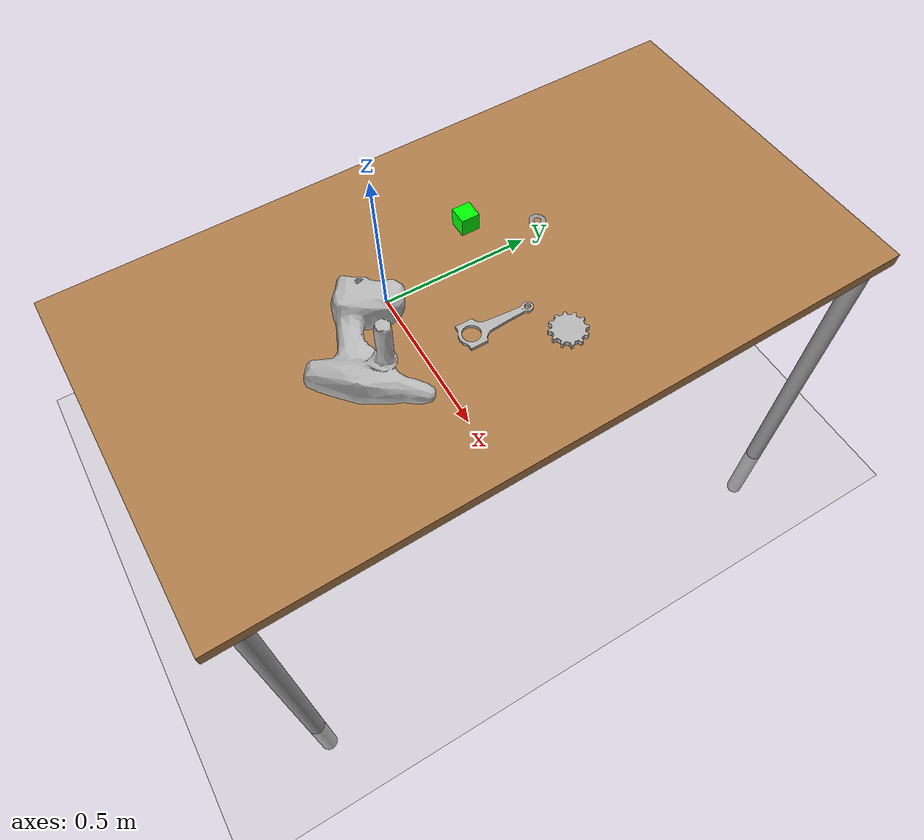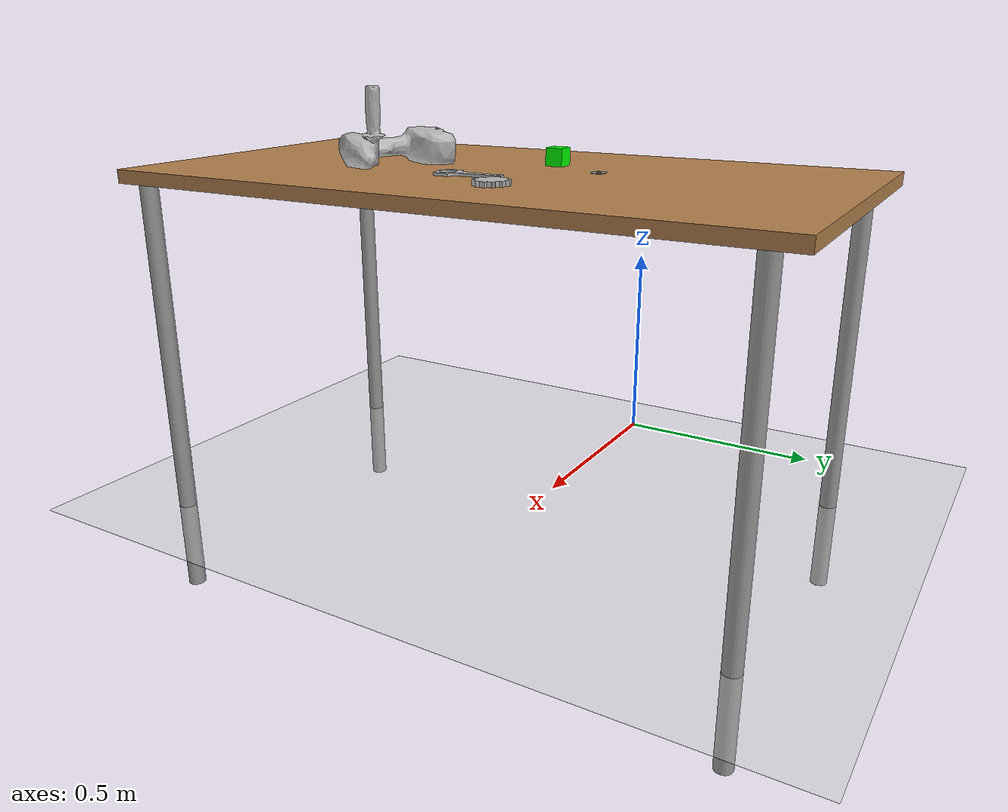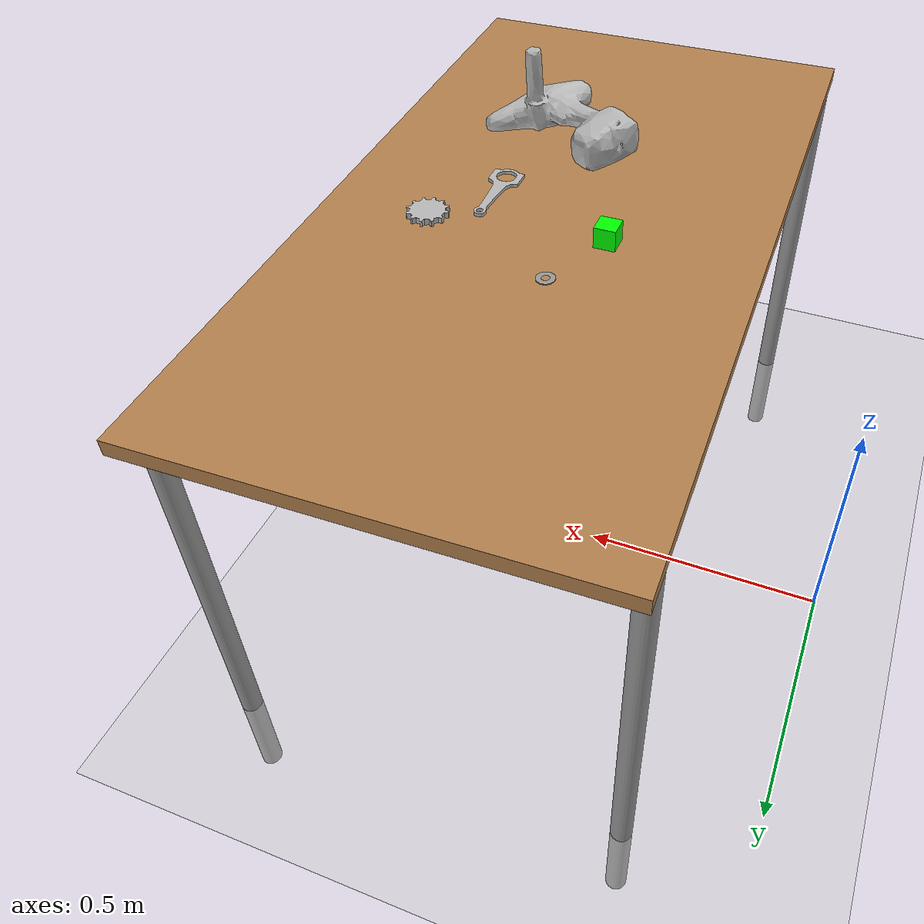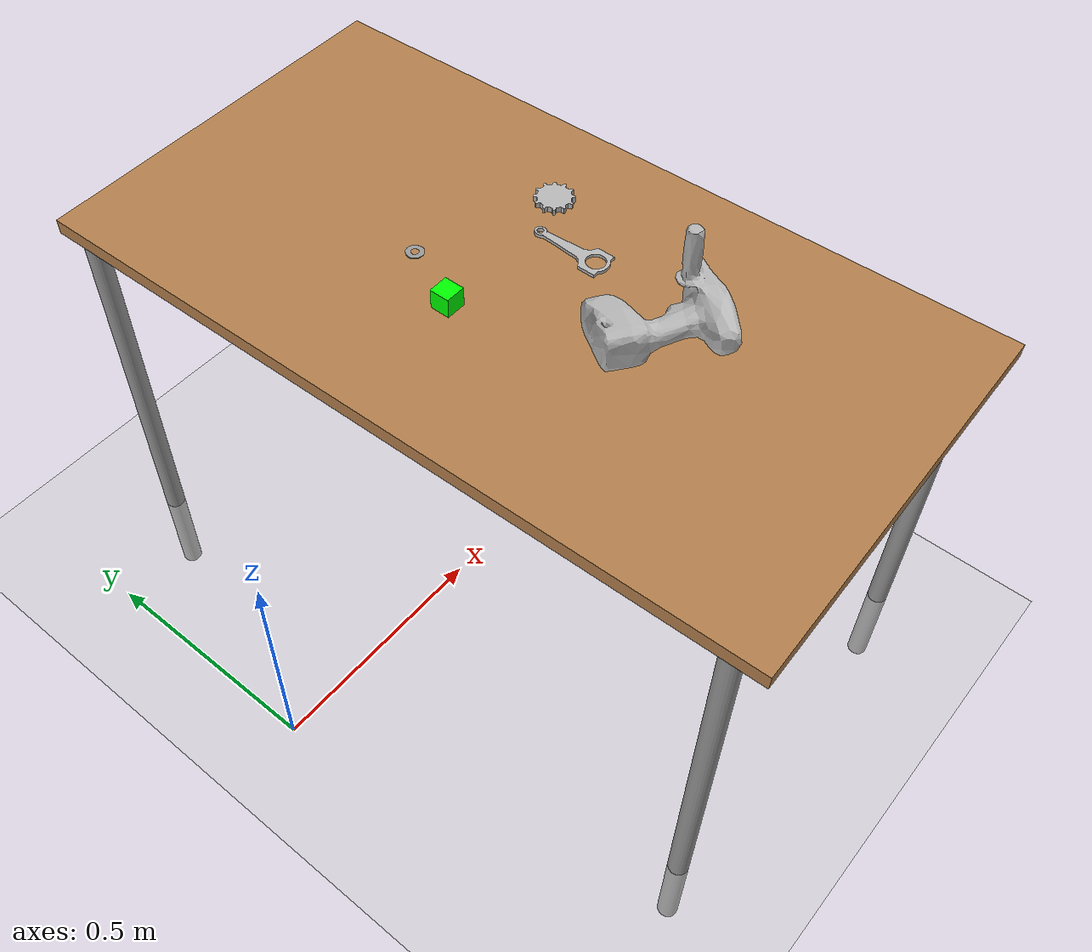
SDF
<sdf version="1.7">
 <world name="default">
  <light name="sun" type="directional">
   <pose>0 0 10 0 -0 0</pose>
   <diffuse>0.8 0.8 0.8 1</diffuse>
   <specular>0.2 0.2 0.2 1</specular>
   <attenuation>
    <range>1000</range>
    <constant>0.9</constant>
    <linear>0.01</linear>
    <quadratic>0.001</quadratic>
   </attenuation>
   <direction>-0.5 0.1 -0.9</direction>
   <spot><inner_angle>0</inner_angle><outer_angle>0</outer_angle><falloff>0</falloff></spot>
  </light>
  <model name="ground_plane">
   <static>1</static>
   <link name="link">
    <collision name="collision">
     <geometry><plane><normal>0 0 1</normal><size>100 100</size></plane></geometry>
     <surface><friction><ode><mu>100</mu><mu2>50</mu2></ode></friction></surface>
    </collision>
    <visual name="visual">
     <cast_shadows>0</cast_shadows>
     <geometry><plane><normal>0 0 1</normal><size>100 100</size></plane></geometry>
     <material>
      <script><uri>file://media/materials/scripts/gazebo.material</uri><name>Gazebo/Grey</name></script>
     </material>
    </visual>
   </link>
  </model>
  <gravity>0 0 -9.8</gravity>
  <magnetic_field>6e-06 2.3e-05 -4.2e-05</magnetic_field>
  <atmosphere type="adiabatic"/>
  <physics type="ode">
   <max_step_size>0.001</max_step_size>
   <real_time_factor>1</real_time_factor>
   <real_time_update_rate>1000</real_time_update_rate>
  </physics>
  <scene><ambient>0.8 0.8 0.8 1</ambient><background>0.7 0.7 0.7 1</background><shadows>1</shadows></scene>
  <audio><device>default</device></audio>
  <spherical_coordinates>
   <surface_model>EARTH_WGS84</surface_model>
   <latitude_deg>0</latitude_deg>
   <longitude_deg>0</longitude_deg>
   <elevation>0</elevation>
   <heading_deg>0</heading_deg>
  </spherical_coordinates>
  <model name="table">
   <static>1</static>
   <link name="link">
    <collision name="surface">
     <pose>0 0 1 0 -0 0</pose>
     <geometry><box><size>1.5 0.8 0.03</size></box></geometry>
     <surface><friction><ode><mu>0.6</mu><mu2>0.6</mu2></ode></friction></surface>
    </collision>
    <visual name="visual1">
     <pose>0 0 1 0 -0 0</pose>
     <geometry><box><size>1.5 0.8 0.03</size></box></geometry>
     <material>
      <script><uri>file://media/materials/scripts/gazebo.material</uri><name>Gazebo/Wood</name></script>
     </material>
    </visual>
    <collision name="front_left_leg">
     <pose>0.68 0.38 0.5 0 -0 0</pose>
     <geometry><cylinder><radius>0.02</radius><length>1</length></cylinder></geometry>
    </collision>
    <visual name="front_left_leg">
     <pose>0.68 0.38 0.5 0 -0 0</pose>
     <geometry><cylinder><radius>0.02</radius><length>1</length></cylinder></geometry>
     <material>
      <script><uri>file://media/materials/scripts/gazebo.material</uri><name>Gazebo/Grey</name></script>
     </material>
    </visual>
    <collision name="front_right_leg">
     <pose>0.68 -0.38 0.5 0 -0 0</pose>
     <geometry><cylinder><radius>0.02</radius><length>1</length></cylinder></geometry>
    </collision>
    <visual name="front_right_leg">
     <pose>0.68 -0.38 0.5 0 -0 0</pose>
     <geometry><cylinder><radius>0.02</radius><length>1</length></cylinder></geometry>
     <material>
      <script><uri>file://media/materials/scripts/gazebo.material</uri><name>Gazebo/Grey</name></script>
     </material>
    </visual>
    <collision name="back_right_leg">
     <pose>-0.68 -0.38 0.5 0 -0 0</pose>
     <geometry><cylinder><radius>0.02</radius><length>1</length></cylinder></geometry>
    </collision>
    <visual name="back_right_leg">
     <pose>-0.68 -0.38 0.5 0 -0 0</pose>
     <geometry><cylinder><radius>0.02</radius><length>1</length></cylinder></geometry>
     <material>
      <script><uri>file://media/materials/scripts/gazebo.material</uri><name>Gazebo/Grey</name></script>
     </material>
    </visual>
    <collision name="back_left_leg">
     <pose>-0.68 0.38 0.5 0 -0 0</pose>
     <geometry><cylinder><radius>0.02</radius><length>1</length></cylinder></geometry>
    </collision>
    <visual name="back_left_leg">
     <pose>-0.68 0.38 0.5 0 -0 0</pose>
     <geometry><cylinder><radius>0.02</radius><length>1</length></cylinder></geometry>
     <material>
      <script><uri>file://media/materials/scripts/gazebo.material</uri><name>Gazebo/Grey</name></script>
     </material>
    </visual>
   </link>
   <pose>0.628743 -0.054706 -0.216115 0 0 -1.54736</pose>
  </model>
  <model name="green_cube">
   <link name="link_2">
    <inertial>
     <mass>1</mass>
     <inertia>
      <ixx>0.166667</ixx>
      <ixy>0</ixy>
      <ixz>0</ixz>
      <iyy>0.166667</iyy>
      <iyz>0</iyz>
      <izz>0.166667</izz>
     </inertia>
    </inertial>
    <visual name="visual">
     <geometry><box><size>0.04 0.04 0.04</size></box></geometry>
     <material>
      <lighting>1</lighting>
      <script><uri>file://media/materials/scripts/gazebo.material</uri><name>Gazebo/Grey</name></script>
      <shader type="pixel"><normal_map>__default__</normal_map></shader>
      <ambient>0 1 0 1</ambient>
      <diffuse>0.7 0.7 0.7 1</diffuse>
      <specular>0.01 0.01 0.01 1</specular>
      <emissive>0 0 0 1</emissive>
     </material>
    </visual>
    <collision name="collision">
     <geometry><box><size>0.04 0.04 0.04</size></box></geometry>
     <surface>
      <friction>
       <ode><mu>1</mu><mu2>1</mu2><fdir1>0 0 0</fdir1><slip1>0</slip1><slip2>0</slip2></ode>
       <torsional>
        <coefficient>1</coefficient>
        <patch_radius>0</patch_radius>
        <surface_radius>0</surface_radius>
        <use_patch_radius>1</use_patch_radius>
        <ode><slip>0</slip></ode>
       </torsional>
      </friction>
      <bounce><restitution_coefficient>0</restitution_coefficient><threshold>1e+06</threshold></bounce>
      <contact>
       <collide_without_contact>0</collide_without_contact>
       <collide_without_contact_bitmask>1</collide_without_contact_bitmask>
       <collide_bitmask>1</collide_bitmask>
       <ode>
        <soft_cfm>0</soft_cfm>
        <soft_erp>0.2</soft_erp>
        <kp>1e+13</kp>
        <kd>1</kd>
        <max_vel>0.01</max_vel>
        <min_depth>0</min_depth>
       </ode>
       <bullet>
        <split_impulse>1</split_impulse>
        <split_impulse_penetration_threshold>-0.01</split_impulse_penetration_threshold>
        <soft_cfm>0</soft_cfm>
        <soft_erp>0.2</soft_erp>
        <kp>1e+13</kp>
        <kd>1</kd>
       </bullet>
      </contact>
     </surface>
    </collision>
    <sensor name="box_contact" type="contact">
     <contact><collision>collision</collision><topic>__default_topic__</topic></contact>
    </sensor>
   </link>
   <static>0</static>
   <pose>0.500004 -1e-06 0.818885 1e-06 1.2e-05 0.002425</pose>
  </model>
  <plugin name="gazebo_link_attacher" filename="libgazebo_link_attacher.so"/>
  <plugin name="gazebo_ros_init" filename="libgazebo_ros_init.so"/>
  <plugin name="gazebo_ros_factory" filename="libgazebo_ros_factory.so"/>
  <model name="drill">
   <link name="link">
    <inertial>
     <pose>-0.00637 -0.008 0.13254 0 -0 0</pose>
     <inertia>
      <ixx>0.0133113</ixx>
      <ixy>-0.00030365</ixy>
      <ixz>-0.00034148</ixz>
      <iyy>0.0115766</iyy>
      <iyz>0.00088073</iyz>
      <izz>0.00378028</izz>
     </inertia>
     <mass>1.50252</mass>
    </inertial>
    <collision name="collision">
     <pose>0 0 -0.09 0 -0 0</pose>
     <geometry><mesh><uri>model://cordless_drill/meshes/cordless_drill.stl</uri></mesh></geometry>
     <surface><contact><ode><max_vel>0.1</max_vel><min_depth>0.001</min_depth></ode></contact></surface>
    </collision>
    <visual name="visual">
     <pose>0 0 -0.09 0 -0 0</pose>
     <geometry><mesh><uri>model://cordless_drill/meshes/cordless_drill.dae</uri></mesh></geometry>
    </visual>
   </link>
   <pose>0.571545 -0.240961 0.831898 -1.52001 1.48523 -2.08111</pose>
  </model>
  <model name="gear_part">
   <link name="link">
    <inertial>
     <pose>0 0 0.005875 0 -0 0</pose>
     <mass>0.5</mass>
     <inertia>
      <ixx>0.000198203</ixx>
      <ixy>0</ixy>
      <ixz>0</ixz>
      <iyy>0.000198203</iyy>
      <iyz>0</iyz>
      <izz>0.000384405</izz>
     </inertia>
    </inertial>
    <collision name="collision">
     <pose>0 0 0.005875 0 -0 0</pose>
     <geometry><cylinder><length>0.012</length><radius>0.0392125</radius></cylinder></geometry>
     <surface><contact><ode><max_vel>0.1</max_vel><min_depth>0.001</min_depth></ode></contact></surface>
    </collision>
    <visual name="visual">
     <geometry><mesh><uri>model://gear_part/meshes/gear.dae</uri><scale>0.25 0.25 0.25</scale></mesh></geometry>
     <material>
      <script>
       <uri>model://arm_part/materials/scripts</uri>
       <uri>model://arm_part/materials/textures</uri>
       <name>ArmPart/Diffuse</name>
      </script>
     </material>
    </visual>
   </link>
   <pose>0.828662 0.029778 0.798471 0 -0 0</pose>
  </model>
  <model name="piston_rod_part">
   <link name="link">
    <inertial>
     <pose>0 0.05415 0.00355 0 -0 0</pose>
     <mass>0.5</mass>
     <inertia>
      <ixx>0.00109584</ixx>
      <ixy>0</ixy>
      <ixz>0</ixz>
      <iyy>4.23854e-05</iyy>
      <iyz>0</iyz>
      <izz>0.00113354</izz>
     </inertia>
    </inertial>
    <collision name="collision_1">
     <pose>0 0 0.00375 0 -0 0</pose>
     <geometry><box><size>0.059 0.052 0.0075</size></box></geometry>
     <surface><contact><ode><max_vel>0.1</max_vel><min_depth>0.001</min_depth></ode></contact></surface>
    </collision>
    <collision name="collision_2">
     <pose>0 0.08 0.00375 0 -0 0</pose>
     <geometry><box><size>0.031 0.11 0.0075</size></box></geometry>
     <surface><contact><ode><max_vel>0.1</max_vel><min_depth>0.001</min_depth></ode></contact></surface>
    </collision>
    <visual name="visual">
     <geometry>
      <mesh><uri>model://piston_rod_part/meshes/piston_rod.dae</uri><scale>0.25 0.25 0.25</scale></mesh>
     </geometry>
     <material>
      <script>
       <uri>model://arm_part/materials/scripts</uri>
       <uri>model://arm_part/materials/textures</uri>
       <name>ArmPart/Diffuse</name>
      </script>
     </material>
    </visual>
   </link>
   <pose>0.743454 -0.130871 0.798346 0 -0 0</pose>
  </model>
  <model name="washer">
   <link name="link">
    <pose>0 0 0.001 0 -0 0</pose>
    <inertial>
     <mass>0.0122</mass>
     <inertia>
      <ixx>1.08758e-06</ixx>
      <ixy>0</ixy>
      <ixz>0</ixz>
      <iyy>1.08758e-06</iyy>
      <iyz>0</iyz>
      <izz>2.16703e-06</izz>
     </inertia>
    </inertial>
    <collision name="collision">
     <geometry><mesh><uri>model://washer/meshes/washer.dae</uri></mesh></geometry>
     <surface>
      <contact>
       <poissons_ratio>0.305</poissons_ratio>
       <elastic_modulus>2e+11</elastic_modulus>
       <ode><kp>100000</kp><kd>100</kd><max_vel>100</max_vel><min_depth>0.001</min_depth></ode>
      </contact>
      <friction>
       <torsional>
        <coefficient>1</coefficient>
        <use_patch_radius>0</use_patch_radius>
        <surface_radius>0.01</surface_radius>
       </torsional>
      </friction>
     </surface>
    </collision>
    <visual name="visual">
     <geometry><mesh><uri>model://washer/meshes/washer.dae</uri></mesh></geometry>
     <material>
      <script><uri>file://media/materials/scripts/gazebo.material</uri><name>Gazebo/Grey</name></script>
     </material>
    </visual>
   </link>
   <pose>0.563592 0.132544 0.800519 3.12441 -0.016308 -2.44318</pose>
  </model>
 </world>
</sdf>
